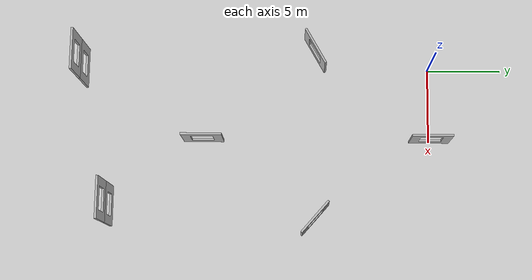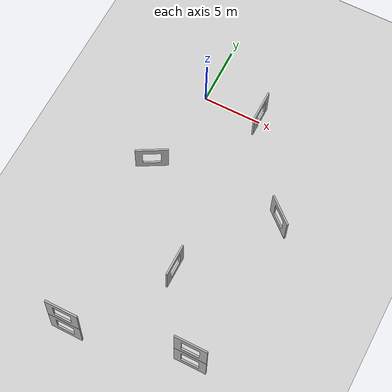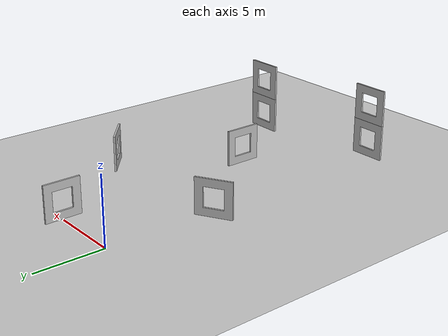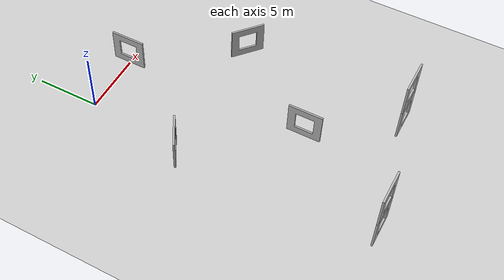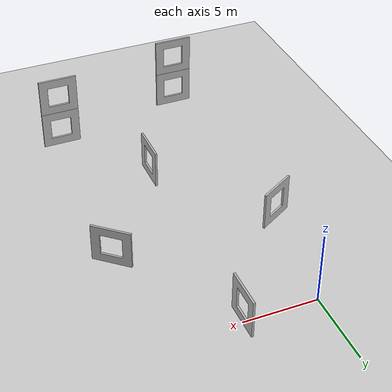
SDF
<?xml version="1.0" ?>
<sdf version="1.4">
  <world name="default">
    <gui fullscreen='0'>
      <camera name='user_camera'>
        <pose>-16.3 4.7 13.0 -0 0.5 -0.78</pose>
        <view_controller>orbit</view_controller>
        <projection_type>perspective</projection_type>
      </camera>
    </gui>

    <include>
      <uri>model://ground_plane</uri>
    </include>

    <light type="directional" name="sun_1">
      <cast_shadows>false</cast_shadows>
      <pose>8 14 50 0 0 0</pose>
      <diffuse>0.8 0.8 0.8 1</diffuse>
      <specular>0.8 0.8 0.8 1</specular>
      <direction>0.5 0.1 -0.9</direction>
    </light>

    <!-- Spawn gate - Currently, .dae is exported with +Y as the forward direction. You need to rotate yaw by 90 degrees to align it correctly.  -->
    <!-- Gate 1 -->
    <include>
      <uri>model://a2rl_gate</uri>
      <name>gate_1</name>
      <pose>5.0 0.0 1.5 0 0 1.5708</pose>
    </include>

    <!-- Gate 2 -->
    <include>
      <uri>model://a2rl_gate</uri>
      <name>gate_2</name>
      <pose>10.36 -7.7 1.5 0 0 2.4295</pose>
    </include>

    <!-- Gate 3 Top-->
    <include>
      <uri>model://a2rl_gate</uri>
      <name>gate_3_top</name>
      <pose>9.5 -21.3 4.2 0 0 3.1416</pose>
    </include>

    <!-- Gate 3 Bottom-->
    <include>
      <uri>model://a2rl_gate</uri>
      <name>gate_3_bottom</name>
      <pose>9.5 -21.3 1.5 0 0 3.1416</pose>
    </include>

    <!-- Gate 4 -->
    <include>
      <uri>model://a2rl_gate</uri>
      <name>gate_4</name>
      <pose>5.0 -15.2 1.5 0 0 1.5708</pose>
    </include>

    <!-- Gate 5 Top-->
    <include>
      <uri>model://a2rl_gate</uri>
      <name>gate_5_top</name>
      <pose>-0.0 -23.3 4.2 0 0 3.1416</pose>
    </include>

    <!-- Gate 5 Bottom-->
    <include>
      <uri>model://a2rl_gate</uri>
      <name>gate_5_bottom</name>
      <pose>-0.0 -23.3 1.5 0 0 3.1416</pose>
    </include>

    <!-- Gate 6 -->
    <include>
      <uri>model://a2rl_gate</uri>
      <name>gate_6</name>
      <pose>-1.0 -7.7 1.5 0 0 0.5166</pose>
    </include>

    <!-- Only one ROS interface plugin is required per world, as any other plugin can connect a Gazebo
         topic to a ROS topic (or vise versa). -->
    <plugin name="ros_interface_plugin" filename="librotors_gazebo_ros_interface_plugin.so"/>

    <spherical_coordinates>
      <surface_model>EARTH_WGS84</surface_model>
      <latitude_deg>47.3667</latitude_deg>
      <longitude_deg>8.5500</longitude_deg>
      <elevation>500.0</elevation>
      <heading_deg>0</heading_deg>
    </spherical_coordinates>
    <physics type='ode'>
      <ode>
        <solver>
          <type>quick</type>
          <iters>1000</iters>
          <sor>1.3</sor>
        </solver>
        <constraints>
          <cfm>0</cfm>
          <erp>0.2</erp>
          <contact_max_correcting_vel>100</contact_max_correcting_vel>
          <contact_surface_layer>0.001</contact_surface_layer>
        </constraints>
      </ode>
      <max_step_size>0.01</max_step_size>
      <real_time_factor>1</real_time_factor>
      <real_time_update_rate>100</real_time_update_rate>
      <gravity>0 0 -9.8</gravity>
    </physics>
  </world>
</sdf>

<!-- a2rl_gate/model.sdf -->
<sdf version="1.5">
  <model name="a2rl_gate">
    <static>true</static>
    <link name="gate_link">
      <visual name="gate_visual">
        <geometry>
          <mesh>
            <uri>model://a2rl_gate/meshes/a2rl_gate.dae</uri>
            <scale>1 1 1</scale>
          </mesh>
        </geometry>
        <material>
          <script>
            <uri>model://a2rl_gate/materials/textures/Frontdesign_Gate.png</uri>
          </script>
        </material>
      </visual>
    </link>
  </model>
</sdf>
